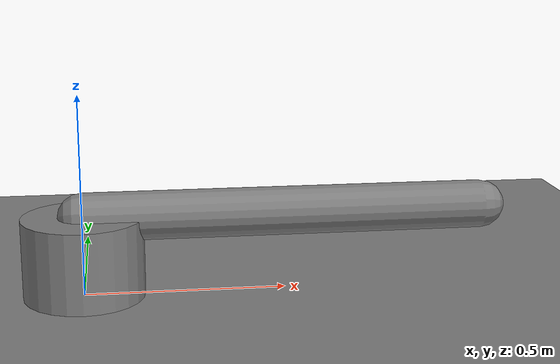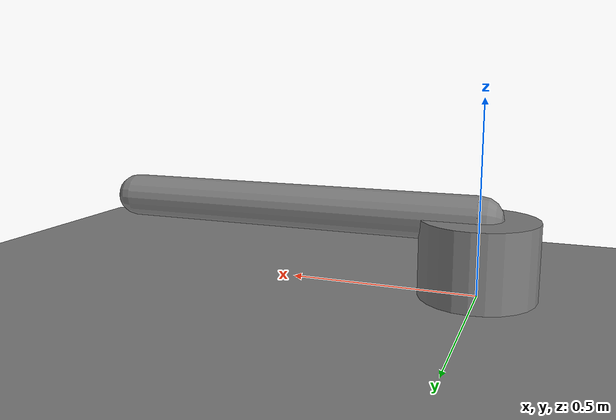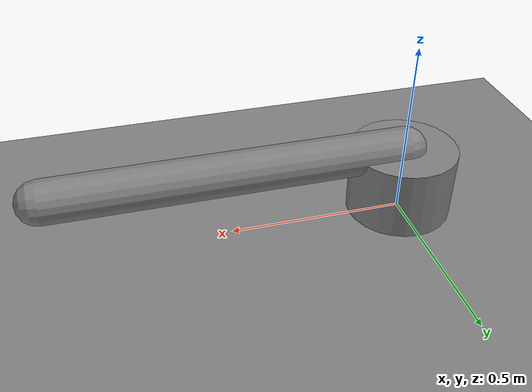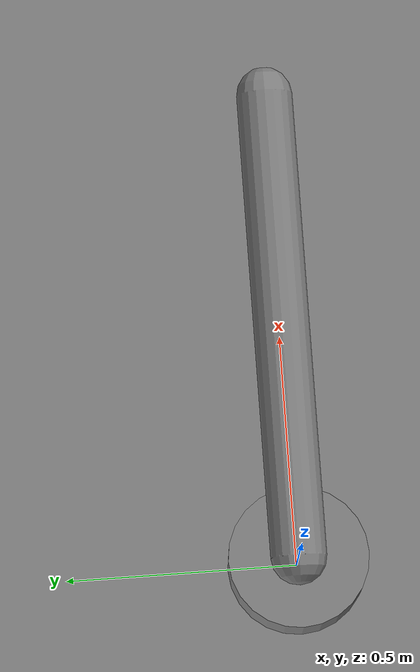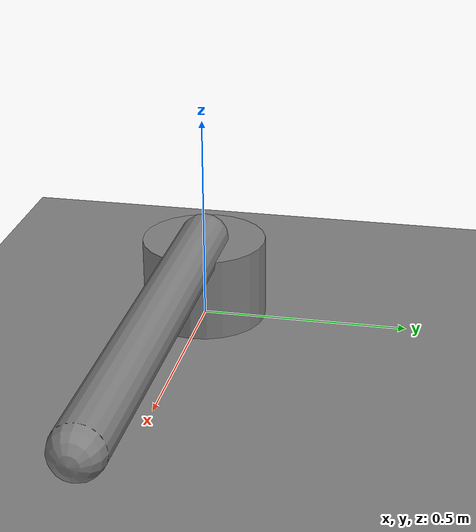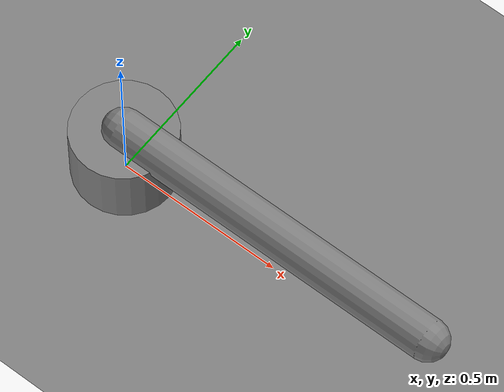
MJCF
<mujoco model="onea_joint_arm">

    <option timestep="0.002" gravity="0 0 -9.81"/>

    <worldbody>

        <!-- 地面 -->
        <geom
            name="ground"
            type="plane"
            size="5 5 0.1"
        />

        <!-- 基座 -->
        <body name="base" pos="0 0 0.1">

            <geom
                type="cylinder"
                size="0.15 0.1"
            />

            <!-- 第一根机械臂 -->
            <body name="link1" pos="0 0 0.1">

                <!-- 旋转关节 -->
                <joint
                    name="joint1"
                    type="hinge"
                    axis="0 0 1"
                    range="-180 180"
                    damping="0.1"
                />

                <!-- 连杆 -->
                <geom
                    name="link1_geom"
                    type="capsule"
                    fromto="0 0 0 1 0 0"
                    size="0.06"
                />

            </body>

        </body>

    </worldbody>

    <contact>
        <exclude body1="base" body2="link1"/>
    </contact>

    <actuator>
        <motor
            name="motor1"
            joint="joint1"
            gear="1"
            ctrllimited="true"
            ctrlrange="-10 10"
        />
    </actuator>

</mujoco>
